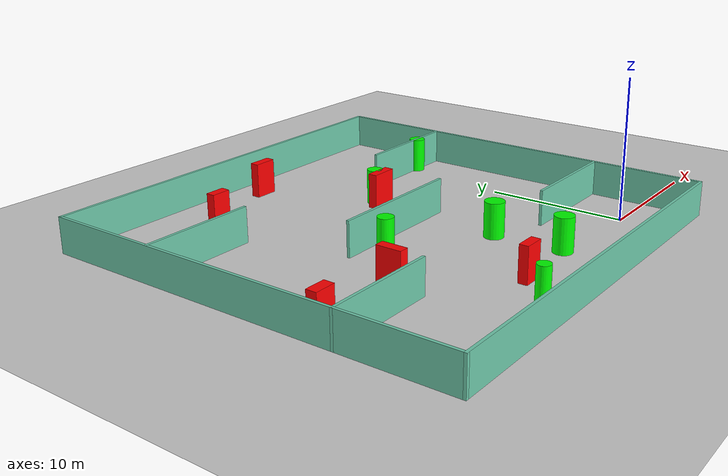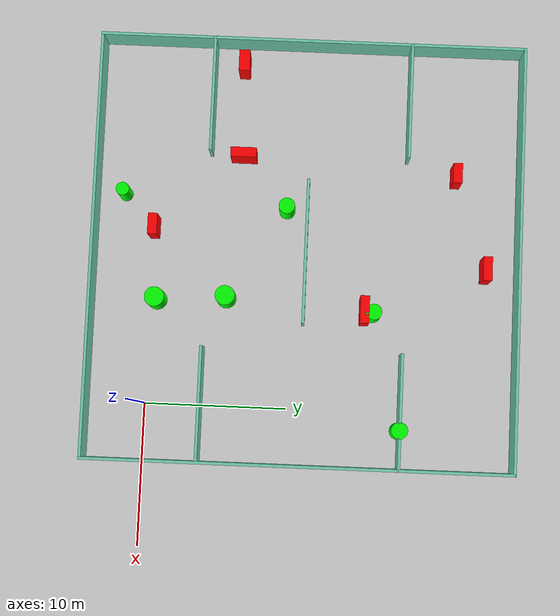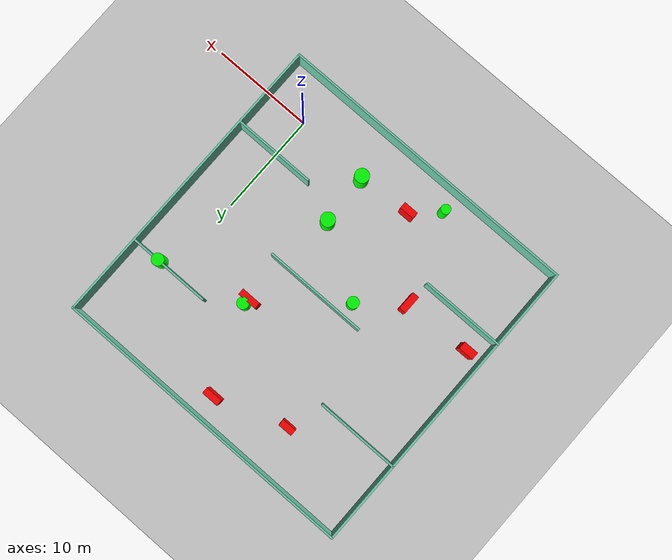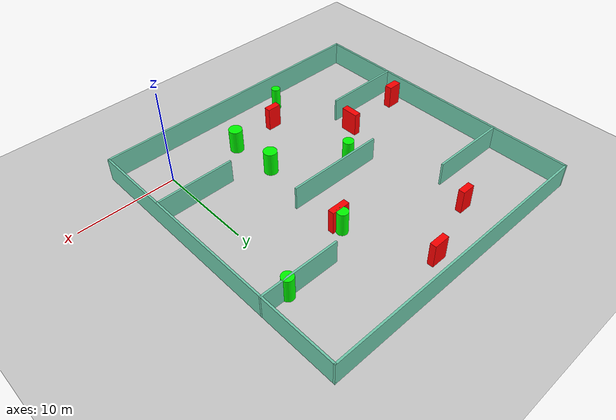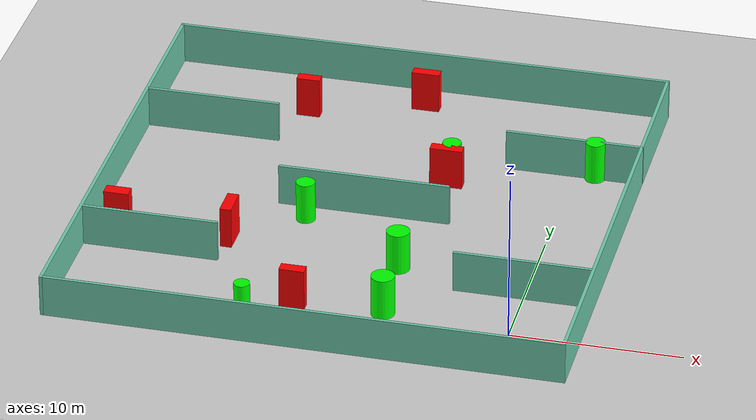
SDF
<sdf version="1.7">
 <world name="default">
  <light name="sun" type="directional">
   <pose>0 0 10 0 -0 0</pose>
   <diffuse>0.8 0.8 0.8 1</diffuse>
   <specular>0.2 0.2 0.2 1</specular>
   <attenuation>
    <range>1000</range>
    <constant>0.9</constant>
    <linear>0.01</linear>
    <quadratic>0.001</quadratic>
   </attenuation>
   <direction>-0.5 0.1 -0.9</direction>
   <spot><inner_angle>0</inner_angle><outer_angle>0</outer_angle><falloff>0</falloff></spot>
  </light>
  <model name="ground_plane">
   <static>1</static>
   <link name="link">
    <collision name="collision">
     <geometry><plane><normal>0 0 1</normal><size>100 100</size></plane></geometry>
     <surface>
      <contact><collide_bitmask>65535</collide_bitmask></contact>
      <friction><ode><mu>100</mu><mu2>50</mu2></ode></friction>
     </surface>
    </collision>
    <visual name="visual">
     <cast_shadows>0</cast_shadows>
     <geometry><plane><normal>0 0 1</normal><size>100 100</size></plane></geometry>
     <material>
      <script><uri>file://media/materials/scripts/gazebo.material</uri><name>Gazebo/Grey</name></script>
     </material>
    </visual>
   </link>
  </model>
  <gravity>0 0 -9.8</gravity>
  <magnetic_field>6e-06 2.3e-05 -4.2e-05</magnetic_field>
  <atmosphere type="adiabatic"/>
  <physics type="ode">
   <max_step_size>0.001</max_step_size>
   <real_time_factor>1</real_time_factor>
   <real_time_update_rate>1000</real_time_update_rate>
  </physics>
  <scene><ambient>0.4 0.4 0.4 1</ambient><background>0.7 0.7 0.7 1</background><shadows>1</shadows></scene>
  <spherical_coordinates>
   <surface_model>EARTH_WGS84</surface_model>
   <latitude_deg>0</latitude_deg>
   <longitude_deg>0</longitude_deg>
   <elevation>0</elevation>
   <heading_deg>0</heading_deg>
  </spherical_coordinates>
  <model name="my_base_walls">
   <link name="Wall_10">
    <collision name="Wall_10_Collision">
     <geometry><box><size>8.2 0.2 2.5</size></box></geometry>
     <pose>0 0 1.25 0 -0 0</pose>
    </collision>
    <visual name="Wall_10_Visual">
     <pose>0 0 1.25 0 -0 0</pose>
     <geometry><box><size>8.2 0.2 2.5</size></box></geometry>
     <material>
      <script><uri>file://media/materials/scripts/gazebo.material</uri><name>Gazebo/Grey</name></script>
      <ambient>0.435294 0.796078 0.67451 1</ambient>
     </material>
     <meta><layer>0</layer></meta>
    </visual>
    <pose>-11 -7 0 0 -0 0</pose>
   </link>
   <link name="Wall_12">
    <collision name="Wall_12_Collision">
     <geometry><box><size>8.2 0.2 2.5</size></box></geometry>
     <pose>0 0 1.25 0 -0 0</pose>
    </collision>
    <visual name="Wall_12_Visual">
     <pose>0 0 1.25 0 -0 0</pose>
     <geometry><box><size>8.2 0.2 2.5</size></box></geometry>
     <material>
      <script><uri>file://media/materials/scripts/gazebo.material</uri><name>Gazebo/Grey</name></script>
      <ambient>0.435294 0.796078 0.67451 1</ambient>
     </material>
     <meta><layer>0</layer></meta>
    </visual>
    <pose>-11 7 0 0 -0 0</pose>
   </link>
   <link name="Wall_14">
    <collision name="Wall_14_Collision">
     <geometry><box><size>8.2 0.2 2.5</size></box></geometry>
     <pose>0 0 1.25 0 -0 0</pose>
    </collision>
    <visual name="Wall_14_Visual">
     <pose>0 0 1.25 0 -0 0</pose>
     <geometry><box><size>8.2 0.2 2.5</size></box></geometry>
     <material>
      <script><uri>file://media/materials/scripts/gazebo.material</uri><name>Gazebo/Grey</name></script>
      <ambient>0.435294 0.796078 0.67451 1</ambient>
     </material>
     <meta><layer>0</layer></meta>
    </visual>
    <pose>11 7 0 0 -0 3.14159</pose>
   </link>
   <link name="Wall_16">
    <collision name="Wall_16_Collision">
     <geometry><box><size>10.2 0.2 2.5</size></box></geometry>
     <pose>0 0 1.25 0 -0 0</pose>
    </collision>
    <visual name="Wall_16_Visual">
     <pose>0 0 1.25 0 -0 0</pose>
     <geometry><box><size>10.2 0.2 2.5</size></box></geometry>
     <material>
      <script><uri>file://media/materials/scripts/gazebo.material</uri><name>Gazebo/Grey</name></script>
      <ambient>0.435294 0.796078 0.67451 1</ambient>
     </material>
     <meta><layer>0</layer></meta>
    </visual>
    <pose>0 0 0 0 -0 3.14159</pose>
   </link>
   <link name="Wall_2">
    <collision name="Wall_2_Collision">
     <geometry><box><size>30.2 0.2 2.5</size></box></geometry>
     <pose>0 0 1.25 0 -0 0</pose>
    </collision>
    <visual name="Wall_2_Visual">
     <pose>0 0 1.25 0 -0 0</pose>
     <geometry><box><size>30.2 0.2 2.5</size></box></geometry>
     <material>
      <script><uri>file://media/materials/scripts/gazebo.material</uri><name>Gazebo/Grey</name></script>
      <ambient>0.435294 0.796078 0.67451 1</ambient>
     </material>
     <meta><layer>0</layer></meta>
    </visual>
    <pose>0 -15 0 0 -0 3.14159</pose>
   </link>
   <link name="Wall_3">
    <collision name="Wall_3_Collision">
     <geometry><box><size>30.2 0.2 2.5</size></box></geometry>
     <pose>0 0 1.25 0 -0 0</pose>
    </collision>
    <visual name="Wall_3_Visual">
     <pose>0 0 1.25 0 -0 0</pose>
     <geometry><box><size>30.2 0.2 2.5</size></box></geometry>
     <material>
      <script><uri>file://media/materials/scripts/gazebo.material</uri><name>Gazebo/Grey</name></script>
      <ambient>0.435294 0.796078 0.67451 1</ambient>
     </material>
     <meta><layer>0</layer></meta>
    </visual>
    <pose>-15 0 0 0 -0 1.5708</pose>
   </link>
   <link name="Wall_4">
    <collision name="Wall_4_Collision">
     <geometry><box><size>30.2 0.2 2.5</size></box></geometry>
     <pose>0 0 1.25 0 -0 0</pose>
    </collision>
    <visual name="Wall_4_Visual">
     <pose>0 0 1.25 0 -0 0</pose>
     <geometry><box><size>30.2 0.2 2.5</size></box></geometry>
     <material>
      <script><uri>file://media/materials/scripts/gazebo.material</uri><name>Gazebo/Grey</name></script>
      <ambient>0.435294 0.796078 0.67451 1</ambient>
     </material>
     <meta><layer>0</layer></meta>
    </visual>
    <pose>0 15 0 0 -0 0</pose>
   </link>
   <link name="Wall_6">
    <collision name="Wall_6_Collision">
     <geometry><box><size>30.2 0.2 2.5</size></box></geometry>
     <pose>0 0 1.25 0 -0 0</pose>
    </collision>
    <visual name="Wall_6_Visual">
     <pose>0 0 1.25 0 -0 0</pose>
     <geometry><box><size>30.2 0.2 2.5</size></box></geometry>
     <material>
      <script><uri>file://media/materials/scripts/gazebo.material</uri><name>Gazebo/Grey</name></script>
      <ambient>0.435294 0.796078 0.67451 1</ambient>
     </material>
     <meta><layer>0</layer></meta>
    </visual>
    <pose>15 0 0 0 -0 1.5708</pose>
   </link>
   <link name="Wall_8">
    <collision name="Wall_8_Collision">
     <geometry><box><size>8.2 0.2 2.5</size></box></geometry>
     <pose>0 0 1.25 0 -0 0</pose>
    </collision>
    <visual name="Wall_8_Visual">
     <pose>0 0 1.25 0 -0 0</pose>
     <geometry><box><size>8.2 0.2 2.5</size></box></geometry>
     <material>
      <script><uri>file://media/materials/scripts/gazebo.material</uri><name>Gazebo/Grey</name></script>
      <ambient>0.435294 0.796078 0.67451 1</ambient>
     </material>
     <meta><layer>0</layer></meta>
    </visual>
    <pose>11 -7 0 0 -0 3.14159</pose>
   </link>
   <static>1</static>
   <pose>-11 11 0 0 -0 0</pose>
  </model>
  <model name="cylinder1">
   <static>1</static>
   <link name="link">
    <inertial>
     <mass>1</mass>
     <inertia><ixx>0.5</ixx><ixy>0</ixy><ixz>0</ixz><iyy>0.5</iyy><iyz>0</iyz><izz>1</izz></inertia>
    </inertial>
    <collision name="collision">
     <geometry><cylinder><radius>0.6900216468855904</radius><length>2.5</length></cylinder></geometry>
    </collision>
    <visual name="visual">
     <geometry><cylinder><radius>0.6900216468855904</radius><length>2.5</length></cylinder></geometry>
     <material>
      <ambient>0 1 0 1</ambient>
      <diffuse>0 1 0 1</diffuse>
      <specular>0.1 0.1 0.1 1</specular>
      <emissive>0 0 0 0</emissive>
     </material>
    </visual>
   </link>
   <pose>-7.3664007049248905 0.5779997183254353 1.25 0 0 0</pose>
  </model>
  <model name="cylinder2">
   <static>1</static>
   <link name="link">
    <inertial>
     <mass>1</mass>
     <inertia><ixx>0.5</ixx><ixy>0</ixy><ixz>0</ixz><iyy>0.5</iyy><iyz>0</iyz><izz>1</izz></inertia>
    </inertial>
    <collision name="collision">
     <geometry><cylinder><radius>0.6911731142674822</radius><length>2.5</length></cylinder></geometry>
    </collision>
    <visual name="visual">
     <geometry><cylinder><radius>0.6911731142674822</radius><length>2.5</length></cylinder></geometry>
     <material>
      <ambient>0 1 0 1</ambient>
      <diffuse>0 1 0 1</diffuse>
      <specular>0.1 0.1 0.1 1</specular>
      <emissive>0 0 0 0</emissive>
     </material>
    </visual>
   </link>
   <pose>-7.653630641520529 5.494540984490973 1.25 0 0 0</pose>
  </model>
  <model name="cylinder3">
   <static>1</static>
   <link name="link">
    <inertial>
     <mass>1</mass>
     <inertia><ixx>0.5</ixx><ixy>0</ixy><ixz>0</ixz><iyy>0.5</iyy><iyz>0</iyz><izz>1</izz></inertia>
    </inertial>
    <collision name="collision">
     <geometry><cylinder><radius>0.5641392183042474</radius><length>2.5</length></cylinder></geometry>
    </collision>
    <visual name="visual">
     <geometry><cylinder><radius>0.5641392183042474</radius><length>2.5</length></cylinder></geometry>
     <material>
      <ambient>0 1 0 1</ambient>
      <diffuse>0 1 0 1</diffuse>
      <specular>0.1 0.1 0.1 1</specular>
      <emissive>0 0 0 0</emissive>
     </material>
    </visual>
   </link>
   <pose>-14.124959202250007 9.553814760543021 1.25 0 0 0</pose>
  </model>
  <model name="cylinder4">
   <static>1</static>
   <link name="link">
    <inertial>
     <mass>1</mass>
     <inertia><ixx>0.5</ixx><ixy>0</ixy><ixz>0</ixz><iyy>0.5</iyy><iyz>0</iyz><izz>1</izz></inertia>
    </inertial>
    <collision name="collision">
     <geometry><cylinder><radius>0.4643210037079703</radius><length>2.5</length></cylinder></geometry>
    </collision>
    <visual name="visual">
     <geometry><cylinder><radius>0.4643210037079703</radius><length>2.5</length></cylinder></geometry>
     <material>
      <ambient>0 1 0 1</ambient>
      <diffuse>0 1 0 1</diffuse>
      <specular>0.1 0.1 0.1 1</specular>
      <emissive>0 0 0 0</emissive>
     </material>
    </visual>
   </link>
   <pose>-14.87461078203025 -2.0186737734908435 1.25 0 0 0</pose>
  </model>
  <model name="cylinder5">
   <static>1</static>
   <link name="link">
    <inertial>
     <mass>1</mass>
     <inertia><ixx>0.5</ixx><ixy>0</ixy><ixz>0</ixz><iyy>0.5</iyy><iyz>0</iyz><izz>1</izz></inertia>
    </inertial>
    <collision name="collision">
     <geometry><cylinder><radius>0.5869088815761028</radius><length>2.5</length></cylinder></geometry>
    </collision>
    <visual name="visual">
     <geometry><cylinder><radius>0.5869088815761028</radius><length>2.5</length></cylinder></geometry>
     <material>
      <ambient>0 1 0 1</ambient>
      <diffuse>0 1 0 1</diffuse>
      <specular>0.1 0.1 0.1 1</specular>
      <emissive>0 0 0 0</emissive>
     </material>
    </visual>
   </link>
   <pose>1.257695792008441 17.97042734416577 1.25 0 0 0</pose>
  </model>
  <model name="cylinder6">
   <static>1</static>
   <link name="link">
    <inertial>
     <mass>1</mass>
     <inertia><ixx>0.5</ixx><ixy>0</ixy><ixz>0</ixz><iyy>0.5</iyy><iyz>0</iyz><izz>1</izz></inertia>
    </inertial>
    <collision name="collision">
     <geometry><cylinder><radius>0.5618617813369946</radius><length>2.5</length></cylinder></geometry>
    </collision>
    <visual name="visual">
     <geometry><cylinder><radius>0.5618617813369946</radius><length>2.5</length></cylinder></geometry>
     <material>
      <ambient>0 1 0 1</ambient>
      <diffuse>0 1 0 1</diffuse>
      <specular>0.1 0.1 0.1 1</specular>
      <emissive>0 0 0 0</emissive>
     </material>
    </visual>
   </link>
   <pose>-6.90394548270848 15.921125259281858 1.25 0 0 0</pose>
  </model>
  <model name="box1">
   <static>1</static>
   <link name="link">
    <inertial>
     <mass>1</mass>
     <inertia><ixx>0.083</ixx><ixy>0</ixy><ixz>0</ixz><iyy>0.083</iyy><iyz>0</iyz><izz>0.083</izz></inertia>
    </inertial>
    <collision name="collision">
     <geometry><box><size>1.9341643679391876 0.6409416811332265 2.5</size></box></geometry>
    </collision>
    <visual name="visual">
     <geometry><box><size>1.9341643679391876 0.6409416811332265 2.5</size></box></geometry>
     <material>
      <ambient>1 0 0 1</ambient>
      <diffuse>1 0 0 1</diffuse>
      <specular>0.1 0.1 0.1 1</specular>
      <emissive>0 0 0 0</emissive>
     </material>
    </visual>
    <sensor name="my_contact" type="contact">
     <contact><collision>box_collision</collision><topic>__default_topic__</topic></contact>
    </sensor>
   </link>
   <pose>-7.061451158887039 15.2821511877145 1.25 0 0 0</pose>
  </model>
  <model name="box2">
   <static>1</static>
   <link name="link">
    <inertial>
     <mass>1</mass>
     <inertia><ixx>0.083</ixx><ixy>0</ixy><ixz>0</ixz><iyy>0.083</iyy><iyz>0</iyz><izz>0.083</izz></inertia>
    </inertial>
    <collision name="collision">
     <geometry><box><size>1.4065453487564734 0.6365403822414799 2.5</size></box></geometry>
    </collision>
    <visual name="visual">
     <geometry><box><size>1.4065453487564734 0.6365403822414799 2.5</size></box></geometry>
     <material>
      <ambient>1 0 0 1</ambient>
      <diffuse>1 0 0 1</diffuse>
      <specular>0.1 0.1 0.1 1</specular>
      <emissive>0 0 0 0</emissive>
     </material>
    </visual>
    <sensor name="my_contact" type="contact">
     <contact><collision>box_collision</collision><topic>__default_topic__</topic></contact>
    </sensor>
   </link>
   <pose>-16.933933245425717 21.47489338633676 1.25 0 0 0</pose>
  </model>
  <model name="box3">
   <static>1</static>
   <link name="link">
    <inertial>
     <mass>1</mass>
     <inertia><ixx>0.083</ixx><ixy>0</ixy><ixz>0</ixz><iyy>0.083</iyy><iyz>0</iyz><izz>0.083</izz></inertia>
    </inertial>
    <collision name="collision">
     <geometry><box><size>1.4656424330503257 0.6535287391454027 2.5</size></box></geometry>
    </collision>
    <visual name="visual">
     <geometry><box><size>1.4656424330503257 0.6535287391454027 2.5</size></box></geometry>
     <material>
      <ambient>1 0 0 1</ambient>
      <diffuse>1 0 0 1</diffuse>
      <specular>0.1 0.1 0.1 1</specular>
      <emissive>0 0 0 0</emissive>
     </material>
    </visual>
    <sensor name="my_contact" type="contact">
     <contact><collision>box_collision</collision><topic>__default_topic__</topic></contact>
    </sensor>
   </link>
   <pose>-12.498035876700776 0.1973619828781472 1.25 0 0 0</pose>
  </model>
  <model name="box4">
   <static>1</static>
   <link name="link">
    <inertial>
     <mass>1</mass>
     <inertia><ixx>0.083</ixx><ixy>0</ixy><ixz>0</ixz><iyy>0.083</iyy><iyz>0</iyz><izz>0.083</izz></inertia>
    </inertial>
    <collision name="collision">
     <geometry><box><size>0.6755471797887603 1.8164201949195924 2.5</size></box></geometry>
    </collision>
    <visual name="visual">
     <geometry><box><size>0.6755471797887603 1.8164201949195924 2.5</size></box></geometry>
     <material>
      <ambient>1 0 0 1</ambient>
      <diffuse>1 0 0 1</diffuse>
      <specular>0.1 0.1 0.1 1</specular>
      <emissive>0 0 0 0</emissive>
     </material>
    </visual>
    <sensor name="my_contact" type="contact">
     <contact><collision>box_collision</collision><topic>__default_topic__</topic></contact>
    </sensor>
   </link>
   <pose>-17.826402113790632 6.3455570799054986 1.25 0 0 0</pose>
  </model>
  <model name="box5">
   <static>1</static>
   <link name="link">
    <inertial>
     <mass>1</mass>
     <inertia><ixx>0.083</ixx><ixy>0</ixy><ixz>0</ixz><iyy>0.083</iyy><iyz>0</iyz><izz>0.083</izz></inertia>
    </inertial>
    <collision name="collision">
     <geometry><box><size>1.483121432945949 0.7534320981226862 2.5</size></box></geometry>
    </collision>
    <visual name="visual">
     <geometry><box><size>1.483121432945949 0.7534320981226862 2.5</size></box></geometry>
     <material>
      <ambient>1 0 0 1</ambient>
      <diffuse>1 0 0 1</diffuse>
      <specular>0.1 0.1 0.1 1</specular>
      <emissive>0 0 0 0</emissive>
     </material>
    </visual>
    <sensor name="my_contact" type="contact">
     <contact><collision>box_collision</collision><topic>__default_topic__</topic></contact>
    </sensor>
   </link>
   <pose>-24.43557835470089 6.119614880103802 1.25 0 0 0</pose>
  </model>
  <model name="box6">
   <static>1</static>
   <link name="link">
    <inertial>
     <mass>1</mass>
     <inertia><ixx>0.083</ixx><ixy>0</ixy><ixz>0</ixz><iyy>0.083</iyy><iyz>0</iyz><izz>0.083</izz></inertia>
    </inertial>
    <collision name="collision">
     <geometry><box><size>1.6807162389209214 0.6278651320184742 2.5</size></box></geometry>
    </collision>
    <visual name="visual">
     <geometry><box><size>1.6807162389209214 0.6278651320184742 2.5</size></box></geometry>
     <material>
      <ambient>1 0 0 1</ambient>
      <diffuse>1 0 0 1</diffuse>
      <specular>0.1 0.1 0.1 1</specular>
      <emissive>0 0 0 0</emissive>
     </material>
    </visual>
    <sensor name="my_contact" type="contact">
     <contact><collision>box_collision</collision><topic>__default_topic__</topic></contact>
    </sensor>
   </link>
   <pose>-10.264569623809262 23.761359507550363 1.25 0 0 0</pose>
  </model>
 </world>
</sdf>
